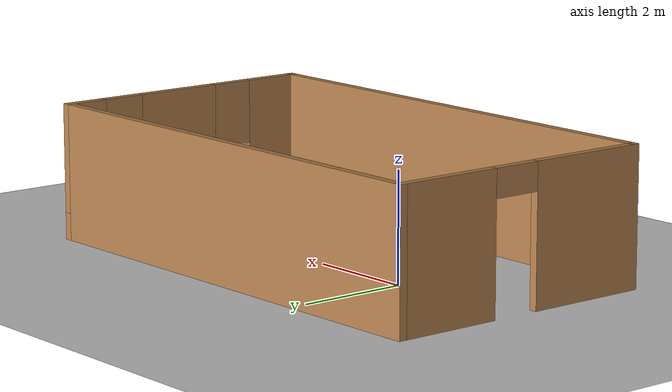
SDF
<sdf version="1.7">
 <world name="default">
  <light name="sun" type="directional">
   <pose>0 0 10 0 -0 0</pose>
   <diffuse>0.8 0.8 0.8 1</diffuse>
   <specular>0.2 0.2 0.2 1</specular>
   <attenuation>
    <range>1000</range>
    <constant>0.9</constant>
    <linear>0.01</linear>
    <quadratic>0.001</quadratic>
   </attenuation>
   <direction>-0.5 0.1 -0.9</direction>
   <spot><inner_angle>0</inner_angle><outer_angle>0</outer_angle><falloff>0</falloff></spot>
  </light>
  <model name="ground_plane">
   <static>1</static>
   <link name="link">
    <collision name="collision">
     <geometry><plane><normal>0 0 1</normal><size>100 100</size></plane></geometry>
     <surface>
      <contact><collide_bitmask>65535</collide_bitmask></contact>
      <friction><ode><mu>100</mu><mu2>50</mu2></ode></friction>
     </surface>
    </collision>
    <visual name="visual">
     <cast_shadows>0</cast_shadows>
     <geometry><plane><normal>0 0 1</normal><size>100 100</size></plane></geometry>
     <material>
      <script><uri>file://media/materials/scripts/gazebo.material</uri><name>Gazebo/Grey</name></script>
     </material>
    </visual>
   </link>
  </model>
  <gravity>0 0 -9.8</gravity>
  <magnetic_field>6e-06 2.3e-05 -4.2e-05</magnetic_field>
  <atmosphere type="adiabatic"/>
  <physics type="ode">
   <max_step_size>0.001</max_step_size>
   <real_time_factor>1</real_time_factor>
   <real_time_update_rate>1000</real_time_update_rate>
  </physics>
  <scene><ambient>0.4 0.4 0.4 1</ambient><background>0.7 0.7 0.7 1</background><shadows>1</shadows></scene>
  <audio><device>default</device></audio>
  <spherical_coordinates>
   <surface_model>EARTH_WGS84</surface_model>
   <latitude_deg>0</latitude_deg>
   <longitude_deg>0</longitude_deg>
   <elevation>0</elevation>
   <heading_deg>0</heading_deg>
  </spherical_coordinates>
  <model name="wood_cube_10cm">
   <link name="link">
    <pose>0 0 0.05 0 -0 0</pose>
    <inertial>
     <mass>0.5167</mass>
     <inertia>
      <ixx>0.000861167</ixx>
      <ixy>0</ixy>
      <ixz>0</ixz>
      <iyy>0.000861167</iyy>
      <iyz>0</iyz>
      <izz>0.000861167</izz>
     </inertia>
    </inertial>
    <collision name="collision">
     <geometry><box><size>0.1 0.1 0.1</size></box></geometry>
     <surface>
      <contact>
       <poissons_ratio>0.347</poissons_ratio>
       <elastic_modulus>8.8e+09</elastic_modulus>
       <ode><kp>100000</kp><kd>100</kd><max_vel>100</max_vel><min_depth>0.001</min_depth></ode>
      </contact>
      <friction>
       <torsional>
        <coefficient>1</coefficient>
        <use_patch_radius>0</use_patch_radius>
        <surface_radius>0.01</surface_radius>
       </torsional>
      </friction>
     </surface>
    </collision>
    <visual name="visual">
     <geometry><box><size>0.1 0.1 0.1</size></box></geometry>
     <material>
      <script><uri>file://media/materials/scripts/gazebo.material</uri><name>Gazebo/Wood</name></script>
     </material>
    </visual>
   </link>
   <pose>0.799407 1.47706 -0.001013 0 -0 0.028937</pose>
  </model>
  <model name="testroom">
   <pose>1.88912 -0.285474 0 0 -0 0</pose>
   <link name="Wall_4">
    <pose>-4.55 0 0 0 -0 -1.5708</pose>
    <visual name="Wall_4_Visual_0">
     <pose>-1.60958 0 1.25 0 -0 0</pose>
     <geometry><box><size>2.03083 0.15 2.5</size></box></geometry>
     <material>
      <script><uri>file://media/materials/scripts/gazebo.material</uri><name>Gazebo/Wood</name></script>
      <ambient>1 1 1 1</ambient>
     </material>
     <meta><layer>0</layer></meta>
    </visual>
    <collision name="Wall_4_Collision_0">
     <geometry><box><size>2.03083 0.15 2.5</size></box></geometry>
     <pose>-1.60958 0 1.25 0 -0 0</pose>
    </collision>
    <visual name="Wall_4_Visual_1">
     <pose>1.46542 0 1.25 0 -0 0</pose>
     <geometry><box><size>2.31917 0.15 2.5</size></box></geometry>
     <material>
      <script><uri>file://media/materials/scripts/gazebo.material</uri><name>Gazebo/Wood</name></script>
      <ambient>1 1 1 1</ambient>
     </material>
     <meta><layer>0</layer></meta>
    </visual>
    <collision name="Wall_4_Collision_1">
     <geometry><box><size>2.31917 0.15 2.5</size></box></geometry>
     <pose>1.46542 0 1.25 0 -0 0</pose>
    </collision>
    <visual name="Wall_4_Visual_2">
     <pose>-0.144167 0 2.25 0 -0 0</pose>
     <geometry><box><size>0.9 0.15 0.5</size></box></geometry>
     <material>
      <script><uri>file://media/materials/scripts/gazebo.material</uri><name>Gazebo/Wood</name></script>
      <ambient>1 1 1 1</ambient>
     </material>
     <meta><layer>0</layer></meta>
    </visual>
    <collision name="Wall_4_Collision_2">
     <geometry><box><size>0.9 0.15 0.5</size></box></geometry>
     <pose>-0.144167 0 2.25 0 -0 0</pose>
    </collision>
   </link>
   <link name="Wall_5">
    <collision name="Wall_5_Collision">
     <geometry><box><size>9.25 0.15 2.5</size></box></geometry>
     <pose>0 0 1.25 0 -0 0</pose>
    </collision>
    <visual name="Wall_5_Visual">
     <pose>0 0 1.25 0 -0 0</pose>
     <geometry><box><size>9.25 0.15 2.5</size></box></geometry>
     <material>
      <script><uri>file://media/materials/scripts/gazebo.material</uri><name>Gazebo/Wood</name></script>
      <ambient>1 1 1 1</ambient>
     </material>
     <meta><layer>0</layer></meta>
    </visual>
    <pose>0 -2.55 0 0 -0 0</pose>
   </link>
   <link name="Wall_6">
    <pose>4.55 0 0 0 -0 1.5708</pose>
    <visual name="Wall_6_Visual_0">
     <pose>-2.05222 0 1.25 0 -0 0</pose>
     <geometry><box><size>1.14556 0.15 2.5</size></box></geometry>
     <material>
      <script><uri>file://media/materials/scripts/gazebo.material</uri><name>Gazebo/Wood</name></script>
      <ambient>1 1 1 1</ambient>
     </material>
     <meta><layer>0</layer></meta>
    </visual>
    <collision name="Wall_6_Collision_0">
     <geometry><box><size>1.14556 0.15 2.5</size></box></geometry>
     <pose>-2.05222 0 1.25 0 -0 0</pose>
    </collision>
    <visual name="Wall_6_Visual_1">
     <pose>0.572779 0 0.25 0 -0 0</pose>
     <geometry><box><size>4.10444 0.15 0.5</size></box></geometry>
     <material>
      <script><uri>file://media/materials/scripts/gazebo.material</uri><name>Gazebo/Wood</name></script>
      <ambient>1 1 1 1</ambient>
     </material>
     <meta><layer>0</layer></meta>
    </visual>
    <collision name="Wall_6_Collision_1">
     <geometry><box><size>4.10444 0.15 0.5</size></box></geometry>
     <pose>0.572779 0 0.25 0 -0 0</pose>
    </collision>
    <visual name="Wall_6_Visual_2">
     <pose>0.157467 0 1.5 0 -0 0</pose>
     <geometry><box><size>1.67382 0.15 2</size></box></geometry>
     <material>
      <script><uri>file://media/materials/scripts/gazebo.material</uri><name>Gazebo/Wood</name></script>
      <ambient>1 1 1 1</ambient>
     </material>
     <meta><layer>0</layer></meta>
    </visual>
    <collision name="Wall_6_Collision_2">
     <geometry><box><size>1.67382 0.15 2</size></box></geometry>
     <pose>0.157467 0 1.5 0 -0 0</pose>
    </collision>
    <visual name="Wall_6_Visual_3">
     <pose>2.20969 0 1.5 0 -0 0</pose>
     <geometry><box><size>0.830624 0.15 2</size></box></geometry>
     <material>
      <script><uri>file://media/materials/scripts/gazebo.material</uri><name>Gazebo/Wood</name></script>
      <ambient>1 1 1 1</ambient>
     </material>
     <meta><layer>0</layer></meta>
    </visual>
    <collision name="Wall_6_Collision_3">
     <geometry><box><size>0.830624 0.15 2</size></box></geometry>
     <pose>2.20969 0 1.5 0 -0 0</pose>
    </collision>
    <visual name="Wall_6_Visual_4">
     <pose>-1.07944 0 1.9 0 -0 0</pose>
     <geometry><box><size>0.8 0.15 1.2</size></box></geometry>
     <material>
      <script><uri>file://media/materials/scripts/gazebo.material</uri><name>Gazebo/Wood</name></script>
      <ambient>1 1 1 1</ambient>
     </material>
     <meta><layer>0</layer></meta>
    </visual>
    <collision name="Wall_6_Collision_4">
     <geometry><box><size>0.8 0.15 1.2</size></box></geometry>
     <pose>-1.07944 0 1.9 0 -0 0</pose>
    </collision>
    <visual name="Wall_6_Visual_5">
     <pose>1.39438 0 1.9 0 -0 0</pose>
     <geometry><box><size>0.8 0.15 1.2</size></box></geometry>
     <material>
      <script><uri>file://media/materials/scripts/gazebo.material</uri><name>Gazebo/Wood</name></script>
      <ambient>1 1 1 1</ambient>
     </material>
     <meta><layer>0</layer></meta>
    </visual>
    <collision name="Wall_6_Collision_5">
     <geometry><box><size>0.8 0.15 1.2</size></box></geometry>
     <pose>1.39438 0 1.9 0 -0 0</pose>
    </collision>
   </link>
   <link name="Wall_7">
    <collision name="Wall_7_Collision">
     <geometry><box><size>9.25 0.15 2.5</size></box></geometry>
     <pose>0 0 1.25 0 -0 0</pose>
    </collision>
    <visual name="Wall_7_Visual">
     <pose>0 0 1.25 0 -0 0</pose>
     <geometry><box><size>9.25 0.15 2.5</size></box></geometry>
     <material>
      <script><uri>file://media/materials/scripts/gazebo.material</uri><name>Gazebo/Wood</name></script>
      <ambient>1 1 1 1</ambient>
     </material>
     <meta><layer>0</layer></meta>
    </visual>
    <pose>0 2.55 0 0 -0 3.14159</pose>
   </link>
   <static>1</static>
  </model>
 </world>
</sdf>
